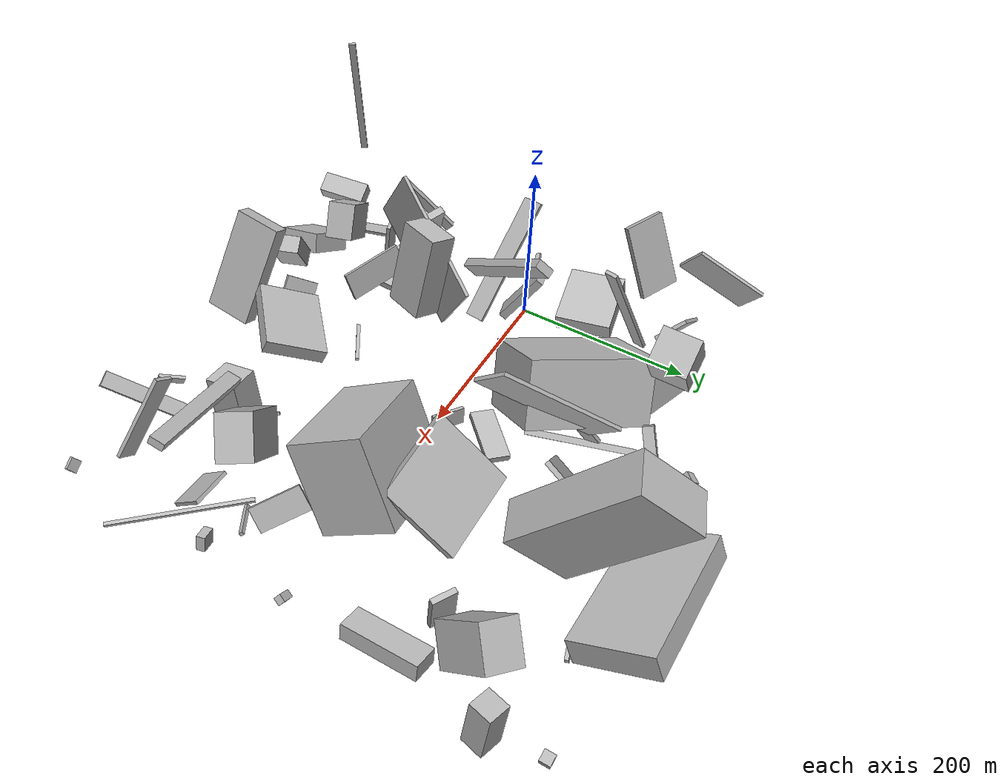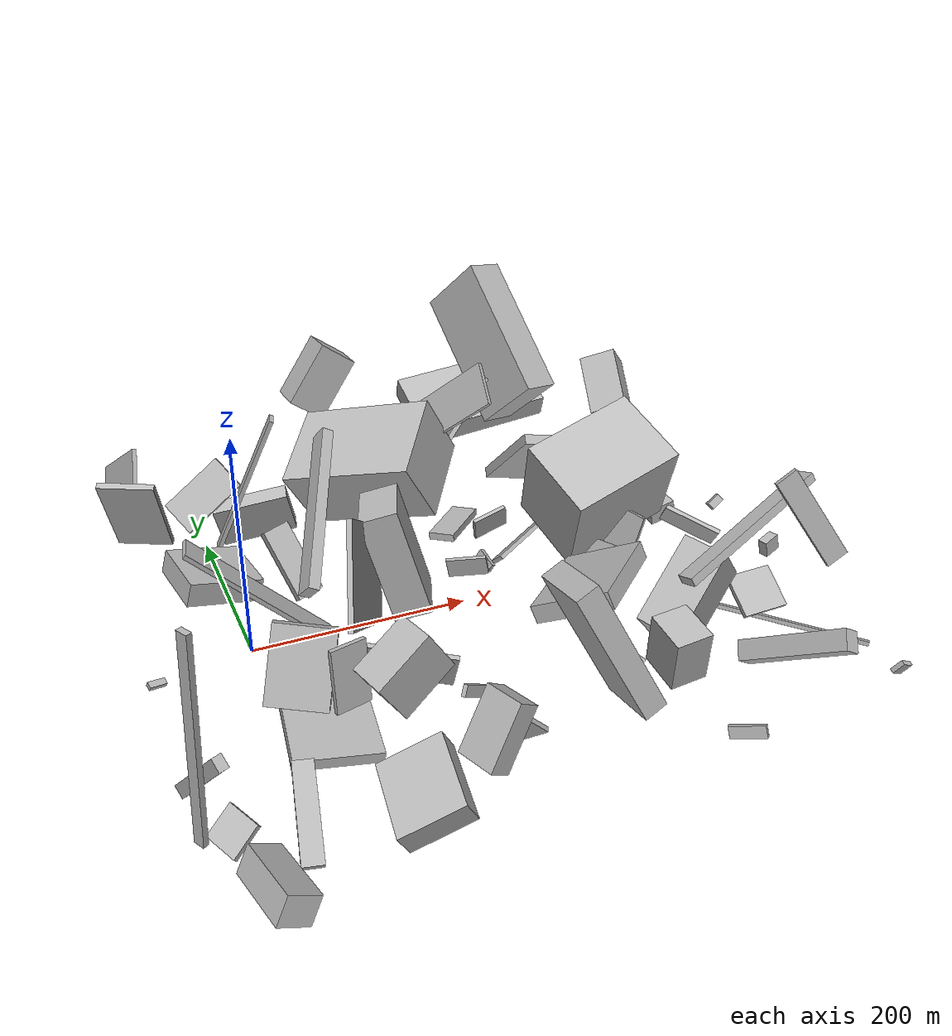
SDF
<sdf version="1.6">
 <world name="default">
  <scene>
   <sky><clouds><speed>12</speed></clouds></sky>
   <ambient>0.4 0.4 0.4 1</ambient>
   <background>0.7 0.7 0.7 1</background>
   <shadows>1</shadows>
  </scene>
  <gravity>0 0 -9.8066</gravity>
  <magnetic_field>6e-06 2.3e-05 -4.2e-05</magnetic_field>
  <physics default="0" name="default_physics" type="ode">
   <ode>
    <solver>
     <type>quick</type>
     <iters>10</iters>
     <sor>1.0</sor>
     <use_dynamic_moi_rescaling>0</use_dynamic_moi_rescaling>
    </solver>
    <constraints>
     <cfm>0</cfm>
     <erp>0.2</erp>
     <contact_max_correcting_vel>100</contact_max_correcting_vel>
     <contact_surface_layer>0.001</contact_surface_layer>
    </constraints>
   </ode>
   <max_step_size>0.004</max_step_size>
   <real_time_factor>1</real_time_factor>
   <real_time_update_rate>250</real_time_update_rate>
  </physics>
  <light name="sun" type="directional">
   <pose>0 0 10 0 0 0</pose>
   <diffuse>0.8 0.8 0.8 1</diffuse>
   <specular>0.2 0.2 0.2 1</specular>
   <attenuation>
    <range>1000</range>
    <constant>0.9</constant>
    <linear>0.01</linear>
    <quadratic>0.001</quadratic>
   </attenuation>
   <direction>-0.5 0.1 -0.9</direction>
  </light>
  <model name="building_1">
   <static>0</static>
   <pose>122.48155787842988 -165.40569882083247 54.23792474281129 -1.3924681749209311 -0.32894752848862896 1.1041157537609096</pose>
   <link name="link">
    <gravity>0</gravity>
    <pose>0 0 35.5 0 0 0</pose>
    <collision name="collision"><geometry><box><size>4 33 71</size></box></geometry></collision>
    <visual name="visual">
     <cast_shadows>0</cast_shadows>
     <geometry><box><size>4 33 71</size></box></geometry>
     <material>
      <script>
       <uri>model://HANNAS_wall/materials/scripts</uri>
       <uri>model://HANNAS_wall/materials/textures</uri>
       <name>vrc/HANNAS_wall</name>
      </script>
     </material>
    </visual>
   </link>
  </model>
  <model name="building_2">
   <static>0</static>
   <pose>134.18896897055595 101.46861341305646 74.65124037736199 0.4553625927999913 -1.011986224413628 -2.743295571339043</pose>
   <link name="link">
    <gravity>0</gravity>
    <pose>0 0 42.5 0 0 0</pose>
    <collision name="collision"><geometry><box><size>70 135 85</size></box></geometry></collision>
    <visual name="visual">
     <cast_shadows>0</cast_shadows>
     <geometry><box><size>70 135 85</size></box></geometry>
     <material>
      <script>
       <uri>model://HANNAS_wall/materials/scripts</uri>
       <uri>model://HANNAS_wall/materials/textures</uri>
       <name>vrc/HANNAS_wall</name>
      </script>
     </material>
    </visual>
   </link>
  </model>
  <model name="building_3">
   <static>0</static>
   <pose>288.5851510835836 2.7503558915090425 78.53604422078824 1.2686263875552508 -0.45100577865322194 1.8220351428832473</pose>
   <link name="link">
    <gravity>0</gravity>
    <pose>0 0 56.0 0 0 0</pose>
    <collision name="collision"><geometry><box><size>80 98 112</size></box></geometry></collision>
    <visual name="visual">
     <cast_shadows>0</cast_shadows>
     <geometry><box><size>80 98 112</size></box></geometry>
     <material>
      <script>
       <uri>model://HANNAS_wall/materials/scripts</uri>
       <uri>model://HANNAS_wall/materials/textures</uri>
       <name>vrc/HANNAS_wall</name>
      </script>
     </material>
    </visual>
   </link>
  </model>
  <model name="building_4">
   <static>0</static>
   <pose>188.83963874428983 183.24921901904509 83.33816549869354 0.8271106855733247 0.41976145597799314 0.30372829472521234</pose>
   <link name="link">
    <gravity>0</gravity>
    <pose>0 0 75.0 0 0 0</pose>
    <collision name="collision"><geometry><box><size>4 44 150</size></box></geometry></collision>
    <visual name="visual">
     <cast_shadows>0</cast_shadows>
     <geometry><box><size>4 44 150</size></box></geometry>
     <material>
      <script>
       <uri>model://HANNAS_wall/materials/scripts</uri>
       <uri>model://HANNAS_wall/materials/textures</uri>
       <name>vrc/HANNAS_wall</name>
      </script>
     </material>
    </visual>
   </link>
  </model>
  <model name="building_5">
   <static>0</static>
   <pose>241.82979735213007 184.05461472346923 56.699702041341 -0.5095125283016039 0.5587960331003877 -0.5244351398439812</pose>
   <link name="link">
    <gravity>0</gravity>
    <pose>0 0 51.5 0 0 0</pose>
    <collision name="collision"><geometry><box><size>5 73 103</size></box></geometry></collision>
    <visual name="visual">
     <cast_shadows>0</cast_shadows>
     <geometry><box><size>5 73 103</size></box></geometry>
     <material>
      <script>
       <uri>model://HANNAS_wall/materials/scripts</uri>
       <uri>model://HANNAS_wall/materials/textures</uri>
       <name>vrc/HANNAS_wall</name>
      </script>
     </material>
    </visual>
   </link>
  </model>
  <model name="building_6">
   <static>0</static>
   <pose>348.81753443250875 190.8880175516843 105.47339540354149 0.7384227198900648 -0.1357534018057072 -2.766150928420626</pose>
   <link name="link">
    <gravity>0</gravity>
    <pose>0 0 75.0 0 0 0</pose>
    <collision name="collision"><geometry><box><size>42 77 150</size></box></geometry></collision>
    <visual name="visual">
     <cast_shadows>0</cast_shadows>
     <geometry><box><size>42 77 150</size></box></geometry>
     <material>
      <script>
       <uri>model://HANNAS_wall/materials/scripts</uri>
       <uri>model://HANNAS_wall/materials/textures</uri>
       <name>vrc/HANNAS_wall</name>
      </script>
     </material>
    </visual>
   </link>
  </model>
  <model name="building_7">
   <static>0</static>
   <pose>177.09300268122644 257.37475922637145 19.436732129758283 -0.10652788143142573 -0.6970545650497503 -0.6636892182260976</pose>
   <link name="link">
    <gravity>0</gravity>
    <pose>0 0 15.0 0 0 0</pose>
    <collision name="collision"><geometry><box><size>11 13 30</size></box></geometry></collision>
    <visual name="visual">
     <cast_shadows>0</cast_shadows>
     <geometry><box><size>11 13 30</size></box></geometry>
     <material>
      <script>
       <uri>model://HANNAS_wall/materials/scripts</uri>
       <uri>model://HANNAS_wall/materials/textures</uri>
       <name>vrc/HANNAS_wall</name>
      </script>
     </material>
    </visual>
   </link>
  </model>
  <model name="building_8">
   <static>0</static>
   <pose>472.86487634769185 102.22257117088985 17.42617595294037 1.845725767866352 0.0814945324969391 -1.5997729216868377</pose>
   <link name="link">
    <gravity>0</gravity>
    <pose>0 0 14.0 0 0 0</pose>
    <collision name="collision"><geometry><box><size>84 18 28</size></box></geometry></collision>
    <visual name="visual">
     <cast_shadows>0</cast_shadows>
     <geometry><box><size>84 18 28</size></box></geometry>
     <material>
      <script>
       <uri>model://HANNAS_wall/materials/scripts</uri>
       <uri>model://HANNAS_wall/materials/textures</uri>
       <name>vrc/HANNAS_wall</name>
      </script>
     </material>
    </visual>
   </link>
  </model>
  <model name="building_9">
   <static>0</static>
   <pose>18.040365583102332 82.01568531771697 29.154390799762027 -1.3208550693793701 -0.07223972662129999 1.740422077903657</pose>
   <link name="link">
    <gravity>0</gravity>
    <pose>0 0 34.5 0 0 0</pose>
    <collision name="collision"><geometry><box><size>63 22 69</size></box></geometry></collision>
    <visual name="visual">
     <cast_shadows>0</cast_shadows>
     <geometry><box><size>63 22 69</size></box></geometry>
     <material>
      <script>
       <uri>model://HANNAS_wall/materials/scripts</uri>
       <uri>model://HANNAS_wall/materials/textures</uri>
       <name>vrc/HANNAS_wall</name>
      </script>
     </material>
    </visual>
   </link>
  </model>
  <model name="building_10">
   <static>0</static>
   <pose>44.45593832108 20.301459375162125 67.80147381543601 0.9620429352637232 -0.16392973148099751 0.29357160525563253</pose>
   <link name="link">
    <gravity>0</gravity>
    <pose>0 0 4.5 0 0 0</pose>
    <collision name="collision"><geometry><box><size>24 65 9</size></box></geometry></collision>
    <visual name="visual">
     <cast_shadows>0</cast_shadows>
     <geometry><box><size>24 65 9</size></box></geometry>
     <material>
      <script>
       <uri>model://HANNAS_wall/materials/scripts</uri>
       <uri>model://HANNAS_wall/materials/textures</uri>
       <name>vrc/HANNAS_wall</name>
      </script>
     </material>
    </visual>
   </link>
  </model>
  <model name="building_11">
   <static>0</static>
   <pose>-26.42473369279849 182.91775586365043 44.77442022572899 0.7096233787585814 -0.644969715730275 2.199490373279353</pose>
   <link name="link">
    <gravity>0</gravity>
    <pose>0 0 34.0 0 0 0</pose>
    <collision name="collision"><geometry><box><size>37 4 68</size></box></geometry></collision>
    <visual name="visual">
     <cast_shadows>0</cast_shadows>
     <geometry><box><size>37 4 68</size></box></geometry>
     <material>
      <script>
       <uri>model://HANNAS_wall/materials/scripts</uri>
       <uri>model://HANNAS_wall/materials/textures</uri>
       <name>vrc/HANNAS_wall</name>
      </script>
     </material>
    </visual>
   </link>
  </model>
  <model name="building_12">
   <static>0</static>
   <pose>123.59035841637817 -250.09527647461462 61.314144985762425 0.0005334801870328612 -1.005086837361572 0.3547047439669441</pose>
   <link name="link">
    <gravity>0</gravity>
    <pose>0 0 10.0 0 0 0</pose>
    <collision name="collision"><geometry><box><size>52 32 20</size></box></geometry></collision>
    <visual name="visual">
     <cast_shadows>0</cast_shadows>
     <geometry><box><size>52 32 20</size></box></geometry>
     <material>
      <script>
       <uri>model://HANNAS_wall/materials/scripts</uri>
       <uri>model://HANNAS_wall/materials/textures</uri>
       <name>vrc/HANNAS_wall</name>
      </script>
     </material>
    </visual>
   </link>
  </model>
  <model name="building_13">
   <static>0</static>
   <pose>120.60055117201443 -80.30308393003791 68.32800050344977 -0.27696859561597204 -0.037766379092861777 1.2168857445876247</pose>
   <link name="link">
    <gravity>0</gravity>
    <pose>0 0 47.5 0 0 0</pose>
    <collision name="collision"><geometry><box><size>48 31 95</size></box></geometry></collision>
    <visual name="visual">
     <cast_shadows>0</cast_shadows>
     <geometry><box><size>48 31 95</size></box></geometry>
     <material>
      <script>
       <uri>model://HANNAS_wall/materials/scripts</uri>
       <uri>model://HANNAS_wall/materials/textures</uri>
       <name>vrc/HANNAS_wall</name>
      </script>
     </material>
    </visual>
   </link>
  </model>
  <model name="building_14">
   <static>0</static>
   <pose>7.795115093139252 -28.696389573991635 74.49108472645665 2.3931730828867304 0.08012568545695724 -1.7577116137498685</pose>
   <link name="link">
    <gravity>0</gravity>
    <pose>0 0 2.0 0 0 0</pose>
    <collision name="collision"><geometry><box><size>23 150 4</size></box></geometry></collision>
    <visual name="visual">
     <cast_shadows>0</cast_shadows>
     <geometry><box><size>23 150 4</size></box></geometry>
     <material>
      <script>
       <uri>model://HANNAS_wall/materials/scripts</uri>
       <uri>model://HANNAS_wall/materials/textures</uri>
       <name>vrc/HANNAS_wall</name>
      </script>
     </material>
    </visual>
   </link>
  </model>
  <model name="building_15">
   <static>0</static>
   <pose>218.87392735049195 246.86299555760053 59.23284678080958 1.21425648517378 0.7552480463546007 -2.9541938325762676</pose>
   <link name="link">
    <gravity>0</gravity>
    <pose>0 0 5.5 0 0 0</pose>
    <collision name="collision"><geometry><box><size>21 132 11</size></box></geometry></collision>
    <visual name="visual">
     <cast_shadows>0</cast_shadows>
     <geometry><box><size>21 132 11</size></box></geometry>
     <material>
      <script>
       <uri>model://HANNAS_wall/materials/scripts</uri>
       <uri>model://HANNAS_wall/materials/textures</uri>
       <name>vrc/HANNAS_wall</name>
      </script>
     </material>
    </visual>
   </link>
  </model>
  <model name="building_16">
   <static>0</static>
   <pose>64.50862508780517 -260.1267599812662 30.11988802075406 0.3209675128737944 -0.44745742696821983 -0.2364975306489892</pose>
   <link name="link">
    <gravity>0</gravity>
    <pose>0 0 11.5 0 0 0</pose>
    <collision name="collision"><geometry><box><size>51 58 23</size></box></geometry></collision>
    <visual name="visual">
     <cast_shadows>0</cast_shadows>
     <geometry><box><size>51 58 23</size></box></geometry>
     <material>
      <script>
       <uri>model://HANNAS_wall/materials/scripts</uri>
       <uri>model://HANNAS_wall/materials/textures</uri>
       <name>vrc/HANNAS_wall</name>
      </script>
     </material>
    </visual>
   </link>
  </model>
  <model name="building_17">
   <static>0</static>
   <pose>342.9063902321276 -117.48966165169217 49.48085222410475 1.7465972376309524 0.7833087410846056 0.5935341670354533</pose>
   <link name="link">
    <gravity>0</gravity>
    <pose>0 0 20.0 0 0 0</pose>
    <collision name="collision"><geometry><box><size>51 83 40</size></box></geometry></collision>
    <visual name="visual">
     <cast_shadows>0</cast_shadows>
     <geometry><box><size>51 83 40</size></box></geometry>
     <material>
      <script>
       <uri>model://HANNAS_wall/materials/scripts</uri>
       <uri>model://HANNAS_wall/materials/textures</uri>
       <name>vrc/HANNAS_wall</name>
      </script>
     </material>
    </visual>
   </link>
  </model>
  <model name="building_18">
   <static>0</static>
   <pose>167.3553624572429 151.3282469243257 19.040637695109286 0.8821368298970714 0.004688947270829907 -1.2822905614136137</pose>
   <link name="link">
    <gravity>0</gravity>
    <pose>0 0 3.5 0 0 0</pose>
    <collision name="collision"><geometry><box><size>116 8 7</size></box></geometry></collision>
    <visual name="visual">
     <cast_shadows>0</cast_shadows>
     <geometry><box><size>116 8 7</size></box></geometry>
     <material>
      <script>
       <uri>model://HANNAS_wall/materials/scripts</uri>
       <uri>model://HANNAS_wall/materials/textures</uri>
       <name>vrc/HANNAS_wall</name>
      </script>
     </material>
    </visual>
   </link>
  </model>
  <model name="building_19">
   <static>0</static>
   <pose>219.4233788055547 -135.32272225452746 86.03330140712 1.1318422884652264 0.017865725064487102 0.7361320864202275</pose>
   <link name="link">
    <gravity>0</gravity>
    <pose>0 0 33.0 0 0 0</pose>
    <collision name="collision"><geometry><box><size>87 15 66</size></box></geometry></collision>
    <visual name="visual">
     <cast_shadows>0</cast_shadows>
     <geometry><box><size>87 15 66</size></box></geometry>
     <material>
      <script>
       <uri>model://HANNAS_wall/materials/scripts</uri>
       <uri>model://HANNAS_wall/materials/textures</uri>
       <name>vrc/HANNAS_wall</name>
      </script>
     </material>
    </visual>
   </link>
  </model>
  <model name="building_20">
   <static>0</static>
   <pose>214.35206252728804 19.913828105806907 15.416843409490193 0.16402102845215089 -0.1492710303538986 -0.50911042690493</pose>
   <link name="link">
    <gravity>0</gravity>
    <pose>0 0 9.5 0 0 0</pose>
    <collision name="collision"><geometry><box><size>38 4 19</size></box></geometry></collision>
    <visual name="visual">
     <cast_shadows>0</cast_shadows>
     <geometry><box><size>38 4 19</size></box></geometry>
     <material>
      <script>
       <uri>model://HANNAS_wall/materials/scripts</uri>
       <uri>model://HANNAS_wall/materials/textures</uri>
       <name>vrc/HANNAS_wall</name>
      </script>
     </material>
    </visual>
   </link>
  </model>
  <model name="building_21">
   <static>0</static>
   <pose>-55.36956662112823 -264.54249169701217 27.889230604823755 1.3762429645427405 -1.0561045122481072 0.3699281000936809</pose>
   <link name="link">
    <gravity>0</gravity>
    <pose>0 0 28.5 0 0 0</pose>
    <collision name="collision"><geometry><box><size>21 25 57</size></box></geometry></collision>
    <visual name="visual">
     <cast_shadows>0</cast_shadows>
     <geometry><box><size>21 25 57</size></box></geometry>
     <material>
      <script>
       <uri>model://HANNAS_wall/materials/scripts</uri>
       <uri>model://HANNAS_wall/materials/textures</uri>
       <name>vrc/HANNAS_wall</name>
      </script>
     </material>
    </visual>
   </link>
  </model>
  <model name="building_22">
   <static>0</static>
   <pose>336.8196666546415 255.1124052293566 60.657353329987195 -0.2560719738278895 1.1141834592404634 1.3393260413508552</pose>
   <link name="link">
    <gravity>0</gravity>
    <pose>0 0 41.5 0 0 0</pose>
    <collision name="collision"><geometry><box><size>26 150 83</size></box></geometry></collision>
    <visual name="visual">
     <cast_shadows>0</cast_shadows>
     <geometry><box><size>26 150 83</size></box></geometry>
     <material>
      <script>
       <uri>model://HANNAS_wall/materials/scripts</uri>
       <uri>model://HANNAS_wall/materials/textures</uri>
       <name>vrc/HANNAS_wall</name>
      </script>
     </material>
    </visual>
   </link>
  </model>
  <model name="building_23">
   <static>0</static>
   <pose>-75.52103718550528 190.68801187103838 73.3630882971812 0.573377647449859 -0.28165272107476036 -3.0149166594292733</pose>
   <link name="link">
    <gravity>0</gravity>
    <pose>0 0 20.0 0 0 0</pose>
    <collision name="collision"><geometry><box><size>4 87 40</size></box></geometry></collision>
    <visual name="visual">
     <cast_shadows>0</cast_shadows>
     <geometry><box><size>4 87 40</size></box></geometry>
     <material>
      <script>
       <uri>model://HANNAS_wall/materials/scripts</uri>
       <uri>model://HANNAS_wall/materials/textures</uri>
       <name>vrc/HANNAS_wall</name>
      </script>
     </material>
    </visual>
   </link>
  </model>
  <model name="building_24">
   <static>0</static>
   <pose>30.179817443440548 -132.08659992485354 37.773898350277776 2.1970050308556455 1.0326551190455775 -0.06031751108511981</pose>
   <link name="link">
    <gravity>0</gravity>
    <pose>0 0 3.5 0 0 0</pose>
    <collision name="collision"><geometry><box><size>7 4 7</size></box></geometry></collision>
    <visual name="visual">
     <cast_shadows>0</cast_shadows>
     <geometry><box><size>7 4 7</size></box></geometry>
     <material>
      <script>
       <uri>model://HANNAS_wall/materials/scripts</uri>
       <uri>model://HANNAS_wall/materials/textures</uri>
       <name>vrc/HANNAS_wall</name>
      </script>
     </material>
    </visual>
   </link>
  </model>
  <model name="building_25">
   <static>0</static>
   <pose>30.75354203251232 134.30383336817147 94.00642558485382 1.9910269470503543 -0.08324674782068782 1.3213531916117949</pose>
   <link name="link">
    <gravity>0</gravity>
    <pose>0 0 2.0 0 0 0</pose>
    <collision name="collision"><geometry><box><size>14 150 4</size></box></geometry></collision>
    <visual name="visual">
     <cast_shadows>0</cast_shadows>
     <geometry><box><size>14 150 4</size></box></geometry>
     <material>
      <script>
       <uri>model://HANNAS_wall/materials/scripts</uri>
       <uri>model://HANNAS_wall/materials/textures</uri>
       <name>vrc/HANNAS_wall</name>
      </script>
     </material>
    </visual>
   </link>
  </model>
  <model name="building_26">
   <static>0</static>
   <pose>-14.029422390574233 -227.28110152660278 16.987666769347108 0.38910728997930055 0.055407776668691525 -0.17919733043572464</pose>
   <link name="link">
    <gravity>0</gravity>
    <pose>0 0 2.0 0 0 0</pose>
    <collision name="collision"><geometry><box><size>16 77 4</size></box></geometry></collision>
    <visual name="visual">
     <cast_shadows>0</cast_shadows>
     <geometry><box><size>16 77 4</size></box></geometry>
     <material>
      <script>
       <uri>model://HANNAS_wall/materials/scripts</uri>
       <uri>model://HANNAS_wall/materials/textures</uri>
       <name>vrc/HANNAS_wall</name>
      </script>
     </material>
    </visual>
   </link>
  </model>
  <model name="building_27">
   <static>0</static>
   <pose>473.1563369868881 221.11653487557956 27.27687688806314 -0.09197383444819765 -1.3689762190888033 2.9901202435141476</pose>
   <link name="link">
    <gravity>0</gravity>
    <pose>0 0 12.5 0 0 0</pose>
    <collision name="collision"><geometry><box><size>49 24 25</size></box></geometry></collision>
    <visual name="visual">
     <cast_shadows>0</cast_shadows>
     <geometry><box><size>49 24 25</size></box></geometry>
     <material>
      <script>
       <uri>model://HANNAS_wall/materials/scripts</uri>
       <uri>model://HANNAS_wall/materials/textures</uri>
       <name>vrc/HANNAS_wall</name>
      </script>
     </material>
    </visual>
   </link>
  </model>
  <model name="building_28">
   <static>0</static>
   <pose>-52.40036065405425 -207.03812724576062 13.348989483684528 -2.223608918815879 -0.07413904855880094 2.0223831197740583</pose>
   <link name="link">
    <gravity>0</gravity>
    <pose>0 0 13.5 0 0 0</pose>
    <collision name="collision"><geometry><box><size>30 4 27</size></box></geometry></collision>
    <visual name="visual">
     <cast_shadows>0</cast_shadows>
     <geometry><box><size>30 4 27</size></box></geometry>
     <material>
      <script>
       <uri>model://HANNAS_wall/materials/scripts</uri>
       <uri>model://HANNAS_wall/materials/textures</uri>
       <name>vrc/HANNAS_wall</name>
      </script>
     </material>
    </visual>
   </link>
  </model>
  <model name="building_29">
   <static>0</static>
   <pose>395.8222387589987 189.87683734882248 45.463526613232844 2.029712488743291 -0.5499418530411989 1.7292513810119712</pose>
   <link name="link">
    <gravity>0</gravity>
    <pose>0 0 8.0 0 0 0</pose>
    <collision name="collision"><geometry><box><size>4 9 16</size></box></geometry></collision>
    <visual name="visual">
     <cast_shadows>0</cast_shadows>
     <geometry><box><size>4 9 16</size></box></geometry>
     <material>
      <script>
       <uri>model://HANNAS_wall/materials/scripts</uri>
       <uri>model://HANNAS_wall/materials/textures</uri>
       <name>vrc/HANNAS_wall</name>
      </script>
     </material>
    </visual>
   </link>
  </model>
  <model name="building_30">
   <static>0</static>
   <pose>328.7237234253261 81.91516892345709 84.18722955258761 0.7671912462143782 -0.19577464953992638 3.1033326621227033</pose>
   <link name="link">
    <gravity>0</gravity>
    <pose>0 0 5.0 0 0 0</pose>
    <collision name="collision"><geometry><box><size>96 92 10</size></box></geometry></collision>
    <visual name="visual">
     <cast_shadows>0</cast_shadows>
     <geometry><box><size>96 92 10</size></box></geometry>
     <material>
      <script>
       <uri>model://HANNAS_wall/materials/scripts</uri>
       <uri>model://HANNAS_wall/materials/textures</uri>
       <name>vrc/HANNAS_wall</name>
      </script>
     </material>
    </visual>
   </link>
  </model>
  <model name="building_31">
   <static>0</static>
   <pose>295.9604958280619 -150.19587615889446 10.55434326542084 -2.441051002890479 -0.4041083513398248 2.236605200825743</pose>
   <link name="link">
    <gravity>0</gravity>
    <pose>0 0 2.0 0 0 0</pose>
    <collision name="collision"><geometry><box><size>16 4 4</size></box></geometry></collision>
    <visual name="visual">
     <cast_shadows>0</cast_shadows>
     <geometry><box><size>16 4 4</size></box></geometry>
     <material>
      <script>
       <uri>model://HANNAS_wall/materials/scripts</uri>
       <uri>model://HANNAS_wall/materials/textures</uri>
       <name>vrc/HANNAS_wall</name>
      </script>
     </material>
    </visual>
   </link>
  </model>
  <model name="building_32">
   <static>0</static>
   <pose>403.3857050492827 140.78380626642428 37.38058110457981 -1.5765920905400195 -0.1065402611108013 -2.0926513248207006</pose>
   <link name="link">
    <gravity>0</gravity>
    <pose>0 0 13.0 0 0 0</pose>
    <collision name="collision"><geometry><box><size>6 48 26</size></box></geometry></collision>
    <visual name="visual">
     <cast_shadows>0</cast_shadows>
     <geometry><box><size>6 48 26</size></box></geometry>
     <material>
      <script>
       <uri>model://HANNAS_wall/materials/scripts</uri>
       <uri>model://HANNAS_wall/materials/textures</uri>
       <name>vrc/HANNAS_wall</name>
      </script>
     </material>
    </visual>
   </link>
  </model>
  <model name="building_33">
   <static>0</static>
   <pose>309.7017679406142 -205.5775207761533 34.521985350589944 0.4871908468745769 -1.3639983621296055 -2.040735119638538</pose>
   <link name="link">
    <gravity>0</gravity>
    <pose>0 0 19.0 0 0 0</pose>
    <collision name="collision"><geometry><box><size>48 33 38</size></box></geometry></collision>
    <visual name="visual">
     <cast_shadows>0</cast_shadows>
     <geometry><box><size>48 33 38</size></box></geometry>
     <material>
      <script>
       <uri>model://HANNAS_wall/materials/scripts</uri>
       <uri>model://HANNAS_wall/materials/textures</uri>
       <name>vrc/HANNAS_wall</name>
      </script>
     </material>
    </visual>
   </link>
  </model>
  <model name="building_34">
   <static>0</static>
   <pose>457.3748591734733 -190.9769666458088 88.48290301728085 0.17870695600183578 0.5859388988103127 3.026458075835653</pose>
   <link name="link">
    <gravity>0</gravity>
    <pose>0 0 46.0 0 0 0</pose>
    <collision name="collision"><geometry><box><size>20 4 92</size></box></geometry></collision>
    <visual name="visual">
     <cast_shadows>0</cast_shadows>
     <geometry><box><size>20 4 92</size></box></geometry>
     <material>
      <script>
       <uri>model://HANNAS_wall/materials/scripts</uri>
       <uri>model://HANNAS_wall/materials/textures</uri>
       <name>vrc/HANNAS_wall</name>
      </script>
     </material>
    </visual>
   </link>
  </model>
  <model name="building_35">
   <static>0</static>
   <pose>77.90584095146914 -200.60227276391797 82.60126184678577 -0.5922640508302474 -0.03554257679599708 1.8362890121243771</pose>
   <link name="link">
    <gravity>0</gravity>
    <pose>0 0 20.5 0 0 0</pose>
    <collision name="collision"><geometry><box><size>31 50 41</size></box></geometry></collision>
    <visual name="visual">
     <cast_shadows>0</cast_shadows>
     <geometry><box><size>31 50 41</size></box></geometry>
     <material>
      <script>
       <uri>model://HANNAS_wall/materials/scripts</uri>
       <uri>model://HANNAS_wall/materials/textures</uri>
       <name>vrc/HANNAS_wall</name>
      </script>
     </material>
    </visual>
   </link>
  </model>
  <model name="building_36">
   <static>0</static>
   <pose>9.24694976064222 -140.13116265334654 72.44874361947836 1.9488996229500362 -0.12480034128729309 2.7277848042971966</pose>
   <link name="link">
    <gravity>0</gravity>
    <pose>0 0 4.5 0 0 0</pose>
    <collision name="collision"><geometry><box><size>49 63 9</size></box></geometry></collision>
    <visual name="visual">
     <cast_shadows>0</cast_shadows>
     <geometry><box><size>49 63 9</size></box></geometry>
     <material>
      <script>
       <uri>model://HANNAS_wall/materials/scripts</uri>
       <uri>model://HANNAS_wall/materials/textures</uri>
       <name>vrc/HANNAS_wall</name>
      </script>
     </material>
    </visual>
   </link>
  </model>
  <model name="building_37">
   <static>0</static>
   <pose>413.0469204413348 -45.38367666596119 56.607060480835216 0.9361260433378498 -0.3510777346746208 2.399659375839883</pose>
   <link name="link">
    <gravity>0</gravity>
    <pose>0 0 2.0 0 0 0</pose>
    <collision name="collision"><geometry><box><size>54 27 4</size></box></geometry></collision>
    <visual name="visual">
     <cast_shadows>0</cast_shadows>
     <geometry><box><size>54 27 4</size></box></geometry>
     <material>
      <script>
       <uri>model://HANNAS_wall/materials/scripts</uri>
       <uri>model://HANNAS_wall/materials/textures</uri>
       <name>vrc/HANNAS_wall</name>
      </script>
     </material>
    </visual>
   </link>
  </model>
  <model name="building_38">
   <static>0</static>
   <pose>462.51858416323057 -268.38989396140585 24.051474147953442 0.4799484621781227 0.42010047745836987 0.18842944430049988</pose>
   <link name="link">
    <gravity>0</gravity>
    <pose>0 0 6.0 0 0 0</pose>
    <collision name="collision"><geometry><box><size>13 4 12</size></box></geometry></collision>
    <visual name="visual">
     <cast_shadows>0</cast_shadows>
     <geometry><box><size>13 4 12</size></box></geometry>
     <material>
      <script>
       <uri>model://HANNAS_wall/materials/scripts</uri>
       <uri>model://HANNAS_wall/materials/textures</uri>
       <name>vrc/HANNAS_wall</name>
      </script>
     </material>
    </visual>
   </link>
  </model>
  <model name="building_39">
   <static>0</static>
   <pose>149.34343584263203 222.03059631209032 145.43958235890676 -0.06847496786264938 -0.9634928656420333 0.07687227162127593</pose>
   <link name="link">
    <gravity>0</gravity>
    <pose>0 0 19.5 0 0 0</pose>
    <collision name="collision"><geometry><box><size>66 39 39</size></box></geometry></collision>
    <visual name="visual">
     <cast_shadows>0</cast_shadows>
     <geometry><box><size>66 39 39</size></box></geometry>
     <material>
      <script>
       <uri>model://HANNAS_wall/materials/scripts</uri>
       <uri>model://HANNAS_wall/materials/textures</uri>
       <name>vrc/HANNAS_wall</name>
      </script>
     </material>
    </visual>
   </link>
  </model>
  <model name="building_40">
   <static>0</static>
   <pose>362.0750170194625 -37.53105102468248 48.97234927376436 1.4260512145131576 -0.22209322692005226 -2.6940308727486286</pose>
   <link name="link">
    <gravity>0</gravity>
    <pose>0 0 20.0 0 0 0</pose>
    <collision name="collision"><geometry><box><size>4 45 40</size></box></geometry></collision>
    <visual name="visual">
     <cast_shadows>0</cast_shadows>
     <geometry><box><size>4 45 40</size></box></geometry>
     <material>
      <script>
       <uri>model://HANNAS_wall/materials/scripts</uri>
       <uri>model://HANNAS_wall/materials/textures</uri>
       <name>vrc/HANNAS_wall</name>
      </script>
     </material>
    </visual>
   </link>
  </model>
  <model name="building_41">
   <static>0</static>
   <pose>380.55948480103467 -246.66962671952652 55.24354432662134 0.7869347344324388 0.7936049115230586 -2.0573398795055944</pose>
   <link name="link">
    <gravity>0</gravity>
    <pose>0 0 8.0 0 0 0</pose>
    <collision name="collision"><geometry><box><size>17 94 16</size></box></geometry></collision>
    <visual name="visual">
     <cast_shadows>0</cast_shadows>
     <geometry><box><size>17 94 16</size></box></geometry>
     <material>
      <script>
       <uri>model://HANNAS_wall/materials/scripts</uri>
       <uri>model://HANNAS_wall/materials/textures</uri>
       <name>vrc/HANNAS_wall</name>
      </script>
     </material>
    </visual>
   </link>
  </model>
  <model name="building_42">
   <static>0</static>
   <pose>484.2146725178191 12.212250667660179 41.039899340307215 -0.9875256898191087 0.6137825980950057 -3.0916598880484494</pose>
   <link name="link">
    <gravity>0</gravity>
    <pose>0 0 4.0 0 0 0</pose>
    <collision name="collision"><geometry><box><size>14 8 8</size></box></geometry></collision>
    <visual name="visual">
     <cast_shadows>0</cast_shadows>
     <geometry><box><size>14 8 8</size></box></geometry>
     <material>
      <script>
       <uri>model://HANNAS_wall/materials/scripts</uri>
       <uri>model://HANNAS_wall/materials/textures</uri>
       <name>vrc/HANNAS_wall</name>
      </script>
     </material>
    </visual>
   </link>
  </model>
  <model name="building_43">
   <static>0</static>
   <pose>475.2113612817055 -89.18474794439875 38.97629047085028 0.2965474375904883 0.002720463906003491 -1.3388735731751717</pose>
   <link name="link">
    <gravity>0</gravity>
    <pose>0 0 8.0 0 0 0</pose>
    <collision name="collision"><geometry><box><size>9 16 16</size></box></geometry></collision>
    <visual name="visual">
     <cast_shadows>0</cast_shadows>
     <geometry><box><size>9 16 16</size></box></geometry>
     <material>
      <script>
       <uri>model://HANNAS_wall/materials/scripts</uri>
       <uri>model://HANNAS_wall/materials/textures</uri>
       <name>vrc/HANNAS_wall</name>
      </script>
     </material>
    </visual>
   </link>
  </model>
  <model name="building_44">
   <static>0</static>
   <pose>243.08417264900436 96.42603666646531 40.283386217091035 1.5428769820941157 -0.07458890265216808 -0.7741673461268311</pose>
   <link name="link">
    <gravity>0</gravity>
    <pose>0 0 31.0 0 0 0</pose>
    <collision name="collision"><geometry><box><size>25 7 62</size></box></geometry></collision>
    <visual name="visual">
     <cast_shadows>0</cast_shadows>
     <geometry><box><size>25 7 62</size></box></geometry>
     <material>
      <script>
       <uri>model://HANNAS_wall/materials/scripts</uri>
       <uri>model://HANNAS_wall/materials/textures</uri>
       <name>vrc/HANNAS_wall</name>
      </script>
     </material>
    </visual>
   </link>
  </model>
  <model name="building_45">
   <static>0</static>
   <pose>169.77764185309027 154.23166454239276 46.38924999284262 0.8877611496619527 -1.013997269043708 -0.9994749811225323</pose>
   <link name="link">
    <gravity>0</gravity>
    <pose>0 0 2.0 0 0 0</pose>
    <collision name="collision"><geometry><box><size>42 19 4</size></box></geometry></collision>
    <visual name="visual">
     <cast_shadows>0</cast_shadows>
     <geometry><box><size>42 19 4</size></box></geometry>
     <material>
      <script>
       <uri>model://HANNAS_wall/materials/scripts</uri>
       <uri>model://HANNAS_wall/materials/textures</uri>
       <name>vrc/HANNAS_wall</name>
      </script>
     </material>
    </visual>
   </link>
  </model>
  <model name="building_46">
   <static>0</static>
   <pose>289.8608304737313 67.60546990374803 12.703503871063228 -2.9705067365870144 -0.722537542232784 -1.1611329872042768</pose>
   <link name="link">
    <gravity>0</gravity>
    <pose>0 0 2.0 0 0 0</pose>
    <collision name="collision"><geometry><box><size>16 80 4</size></box></geometry></collision>
    <visual name="visual">
     <cast_shadows>0</cast_shadows>
     <geometry><box><size>16 80 4</size></box></geometry>
     <material>
      <script>
       <uri>model://HANNAS_wall/materials/scripts</uri>
       <uri>model://HANNAS_wall/materials/textures</uri>
       <name>vrc/HANNAS_wall</name>
      </script>
     </material>
    </visual>
   </link>
  </model>
  <model name="building_47">
   <static>0</static>
   <pose>479.9302653302603 269.3752801793266 17.87522141560593 3.1167945054235284 1.547366443993268 -1.5829343254497024</pose>
   <link name="link">
    <gravity>0</gravity>
    <pose>0 0 5.5 0 0 0</pose>
    <collision name="collision"><geometry><box><size>4 12 11</size></box></geometry></collision>
    <visual name="visual">
     <cast_shadows>0</cast_shadows>
     <geometry><box><size>4 12 11</size></box></geometry>
     <material>
      <script>
       <uri>model://HANNAS_wall/materials/scripts</uri>
       <uri>model://HANNAS_wall/materials/textures</uri>
       <name>vrc/HANNAS_wall</name>
      </script>
     </material>
    </visual>
   </link>
  </model>
  <model name="building_48">
   <static>0</static>
   <pose>-90.8206755561283 -287.5577296754251 75.68448713242796 -0.05512801391841154 -0.012183460518779112 -2.610036511404056</pose>
   <link name="link">
    <gravity>0</gravity>
    <pose>0 0 75.0 0 0 0</pose>
    <collision name="collision"><geometry><box><size>4 8 150</size></box></geometry></collision>
    <visual name="visual">
     <cast_shadows>0</cast_shadows>
     <geometry><box><size>4 8 150</size></box></geometry>
     <material>
      <script>
       <uri>model://HANNAS_wall/materials/scripts</uri>
       <uri>model://HANNAS_wall/materials/textures</uri>
       <name>vrc/HANNAS_wall</name>
      </script>
     </material>
    </visual>
   </link>
  </model>
  <model name="building_49">
   <static>0</static>
   <pose>61.208233604817714 -149.7200743086115 12.316438226821715 0.6042150443893652 -1.4315134558841707 -0.7292991313332736</pose>
   <link name="link">
    <gravity>0</gravity>
    <pose>0 0 34.5 0 0 0</pose>
    <collision name="collision"><geometry><box><size>9 74 69</size></box></geometry></collision>
    <visual name="visual">
     <cast_shadows>0</cast_shadows>
     <geometry><box><size>9 74 69</size></box></geometry>
     <material>
      <script>
       <uri>model://HANNAS_wall/materials/scripts</uri>
       <uri>model://HANNAS_wall/materials/textures</uri>
       <name>vrc/HANNAS_wall</name>
      </script>
     </material>
    </visual>
   </link>
  </model>
  <model name="building_50">
   <static>0</static>
   <pose>142.28903828939448 -226.12949492282164 34.884312080056944 -0.9933886701678207 -0.5710421987999088 -0.7472169786345518</pose>
   <link name="link">
    <gravity>0</gravity>
    <pose>0 0 2.0 0 0 0</pose>
    <collision name="collision"><geometry><box><size>39 30 4</size></box></geometry></collision>
    <visual name="visual">
     <cast_shadows>0</cast_shadows>
     <geometry><box><size>39 30 4</size></box></geometry>
     <material>
      <script>
       <uri>model://HANNAS_wall/materials/scripts</uri>
       <uri>model://HANNAS_wall/materials/textures</uri>
       <name>vrc/HANNAS_wall</name>
      </script>
     </material>
    </visual>
   </link>
  </model>
  <model name="building_51">
   <static>0</static>
   <pose>78.80951083878904 -93.5718261142906 109.6114874973571 1.6291214537333363 -0.5280363152067543 -2.045165795203801</pose>
   <link name="link">
    <gravity>0</gravity>
    <pose>0 0 2.0 0 0 0</pose>
    <collision name="collision"><geometry><box><size>150 81 4</size></box></geometry></collision>
    <visual name="visual">
     <cast_shadows>0</cast_shadows>
     <geometry><box><size>150 81 4</size></box></geometry>
     <material>
      <script>
       <uri>model://HANNAS_wall/materials/scripts</uri>
       <uri>model://HANNAS_wall/materials/textures</uri>
       <name>vrc/HANNAS_wall</name>
      </script>
     </material>
    </visual>
   </link>
  </model>
  <model name="building_52">
   <static>0</static>
   <pose>227.6874315963127 -252.24184069836352 59.38278717487661 -0.4736932524930978 0.1535806325981546 1.55938718160498</pose>
   <link name="link">
    <gravity>0</gravity>
    <pose>0 0 57.5 0 0 0</pose>
    <collision name="collision"><geometry><box><size>51 19 115</size></box></geometry></collision>
    <visual name="visual">
     <cast_shadows>0</cast_shadows>
     <geometry><box><size>51 19 115</size></box></geometry>
     <material>
      <script>
       <uri>model://HANNAS_wall/materials/scripts</uri>
       <uri>model://HANNAS_wall/materials/textures</uri>
       <name>vrc/HANNAS_wall</name>
      </script>
     </material>
    </visual>
   </link>
  </model>
  <model name="building_53">
   <static>0</static>
   <pose>138.03962988947183 -144.98669343977073 16.621003167821073 -2.114727245533651 -0.09315904156375017 -1.0010300020949199</pose>
   <link name="link">
    <gravity>0</gravity>
    <pose>0 0 20.0 0 0 0</pose>
    <collision name="collision"><geometry><box><size>4 10 40</size></box></geometry></collision>
    <visual name="visual">
     <cast_shadows>0</cast_shadows>
     <geometry><box><size>4 10 40</size></box></geometry>
     <material>
      <script>
       <uri>model://HANNAS_wall/materials/scripts</uri>
       <uri>model://HANNAS_wall/materials/textures</uri>
       <name>vrc/HANNAS_wall</name>
      </script>
     </material>
    </visual>
   </link>
  </model>
  <model name="building_54">
   <static>0</static>
   <pose>41.60452454257516 -50.690002552776384 77.54855443181826 0.8718607312939157 -0.4485203565379463 3.064547852128357</pose>
   <link name="link">
    <gravity>0</gravity>
    <pose>0 0 75.0 0 0 0</pose>
    <collision name="collision"><geometry><box><size>10 20 150</size></box></geometry></collision>
    <visual name="visual">
     <cast_shadows>0</cast_shadows>
     <geometry><box><size>10 20 150</size></box></geometry>
     <material>
      <script>
       <uri>model://HANNAS_wall/materials/scripts</uri>
       <uri>model://HANNAS_wall/materials/textures</uri>
       <name>vrc/HANNAS_wall</name>
      </script>
     </material>
    </visual>
   </link>
  </model>
  <model name="building_55">
   <static>0</static>
   <pose>442.926620583939 -153.91356757405106 5.177832025248993 -0.02911813140308134 -0.18059617752791915 -2.404855185102992</pose>
   <link name="link">
    <gravity>0</gravity>
    <pose>0 0 2.0 0 0 0</pose>
    <collision name="collision"><geometry><box><size>4 150 4</size></box></geometry></collision>
    <visual name="visual">
     <cast_shadows>0</cast_shadows>
     <geometry><box><size>4 150 4</size></box></geometry>
     <material>
      <script>
       <uri>model://HANNAS_wall/materials/scripts</uri>
       <uri>model://HANNAS_wall/materials/textures</uri>
       <name>vrc/HANNAS_wall</name>
      </script>
     </material>
    </visual>
   </link>
  </model>
  <model name="building_56">
   <static>0</static>
   <pose>390.4381576935135 -152.63805205578808 117.51398798933985 2.826998257637301 -0.37898004054288537 0.21546702710441398</pose>
   <link name="link">
    <gravity>0</gravity>
    <pose>0 0 4.0 0 0 0</pose>
    <collision name="collision"><geometry><box><size>150 16 8</size></box></geometry></collision>
    <visual name="visual">
     <cast_shadows>0</cast_shadows>
     <geometry><box><size>150 16 8</size></box></geometry>
     <material>
      <script>
       <uri>model://HANNAS_wall/materials/scripts</uri>
       <uri>model://HANNAS_wall/materials/textures</uri>
       <name>vrc/HANNAS_wall</name>
      </script>
     </material>
    </visual>
   </link>
  </model>
  <model name="building_57">
   <static>0</static>
   <pose>431.2607746171969 -75.80807089497617 35.26178752119479 0.290078181687505 0.604959501155437 -0.8409735857093371</pose>
   <link name="link">
    <gravity>0</gravity>
    <pose>0 0 2.0 0 0 0</pose>
    <collision name="collision"><geometry><box><size>4 41 4</size></box></geometry></collision>
    <visual name="visual">
     <cast_shadows>0</cast_shadows>
     <geometry><box><size>4 41 4</size></box></geometry>
     <material>
      <script>
       <uri>model://HANNAS_wall/materials/scripts</uri>
       <uri>model://HANNAS_wall/materials/textures</uri>
       <name>vrc/HANNAS_wall</name>
      </script>
     </material>
    </visual>
   </link>
  </model>
  <model name="building_58">
   <static>0</static>
   <pose>457.2971153534855 173.40859979753793 81.86571564092412 -0.6979987187589347 -0.35759159086214304 -0.5812246321769822</pose>
   <link name="link">
    <gravity>0</gravity>
    <pose>0 0 33.0 0 0 0</pose>
    <collision name="collision"><geometry><box><size>39 42 66</size></box></geometry></collision>
    <visual name="visual">
     <cast_shadows>0</cast_shadows>
     <geometry><box><size>39 42 66</size></box></geometry>
     <material>
      <script>
       <uri>model://HANNAS_wall/materials/scripts</uri>
       <uri>model://HANNAS_wall/materials/textures</uri>
       <name>vrc/HANNAS_wall</name>
      </script>
     </material>
    </visual>
   </link>
  </model>
  <model name="building_59">
   <static>0</static>
   <pose>323.9897605257284 -284.77634954435865 20.52975305228276 -2.5438926412165186 -1.1729615362492485 1.6810566859881746</pose>
   <link name="link">
    <gravity>0</gravity>
    <pose>0 0 14.5 0 0 0</pose>
    <collision name="collision"><geometry><box><size>10 4 29</size></box></geometry></collision>
    <visual name="visual">
     <cast_shadows>0</cast_shadows>
     <geometry><box><size>10 4 29</size></box></geometry>
     <material>
      <script>
       <uri>model://HANNAS_wall/materials/scripts</uri>
       <uri>model://HANNAS_wall/materials/textures</uri>
       <name>vrc/HANNAS_wall</name>
      </script>
     </material>
    </visual>
   </link>
  </model>
  <model name="building_60">
   <static>0</static>
   <pose>423.5356626030679 -139.23494850094966 36.10847804521441 3.1000546147651096 -0.6605977999669064 1.6029860546818242</pose>
   <link name="link">
    <gravity>0</gravity>
    <pose>0 0 2.0 0 0 0</pose>
    <collision name="collision"><geometry><box><size>39 44 4</size></box></geometry></collision>
    <visual name="visual">
     <cast_shadows>0</cast_shadows>
     <geometry><box><size>39 44 4</size></box></geometry>
     <material>
      <script>
       <uri>model://HANNAS_wall/materials/scripts</uri>
       <uri>model://HANNAS_wall/materials/textures</uri>
       <name>vrc/HANNAS_wall</name>
      </script>
     </material>
    </visual>
   </link>
  </model>
  <model name="building_61">
   <static>0</static>
   <pose>242.10552166613837 45.895881059467904 9.614039300547642 2.279053082469867 1.049060324285765 2.5327241352022507</pose>
   <link name="link">
    <gravity>0</gravity>
    <pose>0 0 2.0 0 0 0</pose>
    <collision name="collision"><geometry><box><size>9 22 4</size></box></geometry></collision>
    <visual name="visual">
     <cast_shadows>0</cast_shadows>
     <geometry><box><size>9 22 4</size></box></geometry>
     <material>
      <script>
       <uri>model://HANNAS_wall/materials/scripts</uri>
       <uri>model://HANNAS_wall/materials/textures</uri>
       <name>vrc/HANNAS_wall</name>
      </script>
     </material>
    </visual>
   </link>
  </model>
  <model name="building_62">
   <static>0</static>
   <pose>40.58094236424684 -164.39057074455047 71.824044176076 1.6729566302369618 -0.011008482185301378 -2.8756025898829014</pose>
   <link name="link">
    <gravity>0</gravity>
    <pose>0 0 2.0 0 0 0</pose>
    <collision name="collision"><geometry><box><size>30 52 4</size></box></geometry></collision>
    <visual name="visual">
     <cast_shadows>0</cast_shadows>
     <geometry><box><size>30 52 4</size></box></geometry>
     <material>
      <script>
       <uri>model://HANNAS_wall/materials/scripts</uri>
       <uri>model://HANNAS_wall/materials/textures</uri>
       <name>vrc/HANNAS_wall</name>
      </script>
     </material>
    </visual>
   </link>
  </model>
  <model name="building_63">
   <static>0</static>
   <pose>52.112041595933974 198.48395812497387 32.6864615225862 -2.626749576843899 -1.2047630158002354 -2.2954966022651737</pose>
   <link name="link">
    <gravity>0</gravity>
    <pose>0 0 8.5 0 0 0</pose>
    <collision name="collision"><geometry><box><size>47 75 17</size></box></geometry></collision>
    <visual name="visual">
     <cast_shadows>0</cast_shadows>
     <geometry><box><size>47 75 17</size></box></geometry>
     <material>
      <script>
       <uri>model://HANNAS_wall/materials/scripts</uri>
       <uri>model://HANNAS_wall/materials/textures</uri>
       <name>vrc/HANNAS_wall</name>
      </script>
     </material>
    </visual>
   </link>
  </model>
  <model name="building_64">
   <static>0</static>
   <pose>288.4628887277223 96.60706272180829 26.547518613182746 2.2784245674685195 -1.2120543152267136 -2.148010064200974</pose>
   <link name="link">
    <gravity>0</gravity>
    <pose>0 0 18.5 0 0 0</pose>
    <collision name="collision"><geometry><box><size>24 4 37</size></box></geometry></collision>
    <visual name="visual">
     <cast_shadows>0</cast_shadows>
     <geometry><box><size>24 4 37</size></box></geometry>
     <material>
      <script>
       <uri>model://HANNAS_wall/materials/scripts</uri>
       <uri>model://HANNAS_wall/materials/textures</uri>
       <name>vrc/HANNAS_wall</name>
      </script>
     </material>
    </visual>
   </link>
  </model>
  <model name="building_65">
   <static>0</static>
   <pose>317.53967672120683 -68.32826889572912 35.74422632062279 0.3540282006258148 0.5782047216375205 -2.957751016461131</pose>
   <link name="link">
    <gravity>0</gravity>
    <pose>0 0 14.5 0 0 0</pose>
    <collision name="collision"><geometry><box><size>34 32 29</size></box></geometry></collision>
    <visual name="visual">
     <cast_shadows>0</cast_shadows>
     <geometry><box><size>34 32 29</size></box></geometry>
     <material>
      <script>
       <uri>model://HANNAS_wall/materials/scripts</uri>
       <uri>model://HANNAS_wall/materials/textures</uri>
       <name>vrc/HANNAS_wall</name>
      </script>
     </material>
    </visual>
   </link>
  </model>
  <model name="building_66">
   <static>0</static>
   <pose>389.80484215464094 246.4281242413881 27.336612793684008 1.4376571799904834 -0.26894659069542504 -2.8598254289690836</pose>
   <link name="link">
    <gravity>0</gravity>
    <pose>0 0 2.0 0 0 0</pose>
    <collision name="collision"><geometry><box><size>17 8 4</size></box></geometry></collision>
    <visual name="visual">
     <cast_shadows>0</cast_shadows>
     <geometry><box><size>17 8 4</size></box></geometry>
     <material>
      <script>
       <uri>model://HANNAS_wall/materials/scripts</uri>
       <uri>model://HANNAS_wall/materials/textures</uri>
       <name>vrc/HANNAS_wall</name>
      </script>
     </material>
    </visual>
   </link>
  </model>
  <model name="building_67">
   <static>0</static>
   <pose>-62.150417203740304 137.71162685149318 51.833143019807906 0.4772310472015382 0.028957923201182945 -0.421800204557434</pose>
   <link name="link">
    <gravity>0</gravity>
    <pose>0 0 43.0 0 0 0</pose>
    <collision name="collision"><geometry><box><size>50 6 86</size></box></geometry></collision>
    <visual name="visual">
     <cast_shadows>0</cast_shadows>
     <geometry><box><size>50 6 86</size></box></geometry>
     <material>
      <script>
       <uri>model://HANNAS_wall/materials/scripts</uri>
       <uri>model://HANNAS_wall/materials/textures</uri>
       <name>vrc/HANNAS_wall</name>
      </script>
     </material>
    </visual>
   </link>
  </model>
  <model name="building_68">
   <static>0</static>
   <pose>-84.74978924548623 -25.750896522836786 5.7655347111044355 -0.4519870350021066 -0.17202730602301777 -2.8108860036652867</pose>
   <link name="link">
    <gravity>0</gravity>
    <pose>0 0 2.0 0 0 0</pose>
    <collision name="collision"><geometry><box><size>15 6 4</size></box></geometry></collision>
    <visual name="visual">
     <cast_shadows>0</cast_shadows>
     <geometry><box><size>15 6 4</size></box></geometry>
     <material>
      <script>
       <uri>model://HANNAS_wall/materials/scripts</uri>
       <uri>model://HANNAS_wall/materials/textures</uri>
       <name>vrc/HANNAS_wall</name>
      </script>
     </material>
    </visual>
   </link>
  </model>
  <model name="building_69">
   <static>0</static>
   <pose>-77.1751519579854 -179.08265507058655 38.20033176913951 2.3402953856714235 -0.04125396560508926 0.3994173232013623</pose>
   <link name="link">
    <gravity>0</gravity>
    <pose>0 0 5.5 0 0 0</pose>
    <collision name="collision"><geometry><box><size>8 86 11</size></box></geometry></collision>
    <visual name="visual">
     <cast_shadows>0</cast_shadows>
     <geometry><box><size>8 86 11</size></box></geometry>
     <material>
      <script>
       <uri>model://HANNAS_wall/materials/scripts</uri>
       <uri>model://HANNAS_wall/materials/textures</uri>
       <name>vrc/HANNAS_wall</name>
      </script>
     </material>
    </visual>
   </link>
  </model>
 </world>
</sdf>
